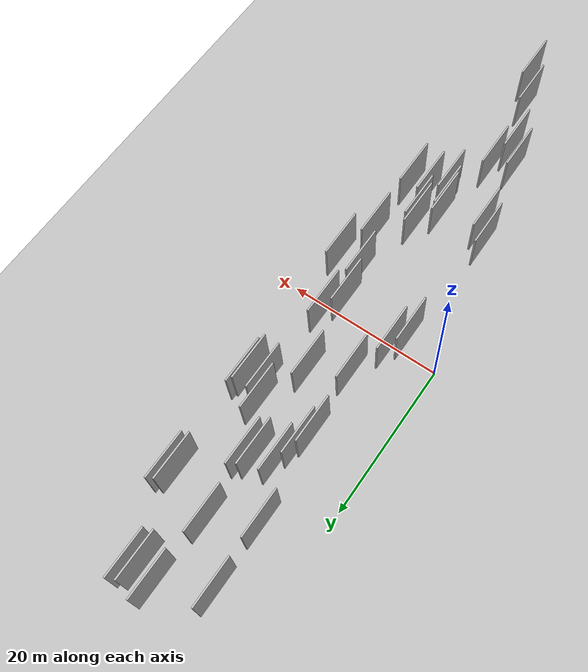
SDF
<?xml version="1.0" encoding="utf-8"?>

<sdf version="1.6">

   <world name="default">

      <gui fullscreen="0">

         <camera name="user_camera">

            <pose>-15 0 4.57585 0 0 0</pose>

            <view_controller>orbit</view_controller>

         </camera>

      </gui>

      <scene>

         <sky>

           <clouds>

             <speed>12</speed>

           </clouds>

         </sky>

         <ambient>0.4 0.4 0.4 1</ambient>

         <background>0.7 0.7 0.7 1</background>

         <shadows>1</shadows>

      </scene>

      <gravity>0 0 -9.8066</gravity>

      <magnetic_field>6e-06 2.3e-05 -4.2e-05</magnetic_field>

      <physics default="0" name="default_physics" type="ode">

         <ode>

            <solver>

               <type>quick</type>

               <iters>10</iters>

               <sor>1.0</sor>

               <use_dynamic_moi_rescaling>0</use_dynamic_moi_rescaling>

            </solver>

            <constraints>

               <cfm>0</cfm>

               <erp>0.2</erp>

               <contact_max_correcting_vel>100</contact_max_correcting_vel>

               <contact_surface_layer>0.001</contact_surface_layer>

            </constraints>

         </ode>

         <max_step_size>0.004</max_step_size>

         <real_time_factor>1</real_time_factor>

         <real_time_update_rate>250</real_time_update_rate>

      </physics>

      <light name="sun" type="directional">

         <cast_shadows>1</cast_shadows>

         <pose>0 0 10 0 0 0</pose>

         <diffuse>0.8 0.8 0.8 1</diffuse>

         <specular>0.2 0.2 0.2 1</specular>

         <attenuation>

            <range>1000</range>

            <constant>0.9</constant>

            <linear>0.01</linear>

            <quadratic>0.001</quadratic>

         </attenuation>

         <direction>-0.5 0.1 -0.9</direction>

      </light>

      <include>

         <name>ground_plane_1</name>

         <uri>model://HANNAS_ground_plane</uri>

         <pose>0 0 0  0 0 0</pose>

      </include>

      <include>

         <name>ground_plane_2</name>

         <uri>model://HANNAS_ground_plane</uri>

         <pose>100 0 0  0 0 0</pose>

      </include>

      <model name="HANNAS_wall_1">

         <static>1</static>

         <pose frame="">10.1155 20.7372 5.0 0.000000 0.000000 1.570796</pose>

         <link name="link">

            <pose frame="">0 0 3.00 0 0 0</pose>

            <collision name="collision">

               <geometry>

                  <box>

                     <size>6.00 0.2 6.00</size>

                  </box>

               </geometry>

               <max_contacts>10</max_contacts>

               <surface>

                  <contact>

                     <ode/>

                  </contact>

                  <bounce/>

                  <friction>

                     <torsional>

                        <ode/>

                     </torsional>

                     <ode/>

                  </friction>

               </surface>

            </collision>

            <visual name="visual">

               <cast_shadows>0</cast_shadows>

               <geometry>

                  <box>

                     <size>6.00 0.2 6.00</size>

                  </box>

               </geometry>

               <material>

                  <script>

                     <uri>model://HANNAS_wall/materials/scripts</uri>

                     <uri>model://HANNAS_wall/materials/textures</uri>

                     <name>vrc/HANNAS_wall</name>

                  </script>

               </material>

            </visual>

            <self_collide>0</self_collide>

            <enable_wind>0</enable_wind>

            <kinematic>0</kinematic>

         </link>

      </model>

      <model name="HANNAS_wall_2">

         <static>1</static>

         <pose frame="">5.0447 34.4858 5.0 0.000000 0.000000 1.570796</pose>

         <link name="link">

            <pose frame="">0 0 3.00 0 0 0</pose>

            <collision name="collision">

               <geometry>

                  <box>

                     <size>6.00 0.2 6.00</size>

                  </box>

               </geometry>

               <max_contacts>10</max_contacts>

               <surface>

                  <contact>

                     <ode/>

                  </contact>

                  <bounce/>

                  <friction>

                     <torsional>

                        <ode/>

                     </torsional>

                     <ode/>

                  </friction>

               </surface>

            </collision>

            <visual name="visual">

               <cast_shadows>0</cast_shadows>

               <geometry>

                  <box>

                     <size>6.00 0.2 6.00</size>

                  </box>

               </geometry>

               <material>

                  <script>

                     <uri>model://HANNAS_wall/materials/scripts</uri>

                     <uri>model://HANNAS_wall/materials/textures</uri>

                     <name>vrc/HANNAS_wall</name>

                  </script>

               </material>

            </visual>

            <self_collide>0</self_collide>

            <enable_wind>0</enable_wind>

            <kinematic>0</kinematic>

         </link>

      </model>

      <model name="HANNAS_wall_3">

         <static>1</static>

         <pose frame="">8.9073 -35.4801 5.0 0.000000 0.000000 1.570796</pose>

         <link name="link">

            <pose frame="">0 0 3.00 0 0 0</pose>

            <collision name="collision">

               <geometry>

                  <box>

                     <size>6.00 0.2 6.00</size>

                  </box>

               </geometry>

               <max_contacts>10</max_contacts>

               <surface>

                  <contact>

                     <ode/>

                  </contact>

                  <bounce/>

                  <friction>

                     <torsional>

                        <ode/>

                     </torsional>

                     <ode/>

                  </friction>

               </surface>

            </collision>

            <visual name="visual">

               <cast_shadows>0</cast_shadows>

               <geometry>

                  <box>

                     <size>6.00 0.2 6.00</size>

                  </box>

               </geometry>

               <material>

                  <script>

                     <uri>model://HANNAS_wall/materials/scripts</uri>

                     <uri>model://HANNAS_wall/materials/textures</uri>

                     <name>vrc/HANNAS_wall</name>

                  </script>

               </material>

            </visual>

            <self_collide>0</self_collide>

            <enable_wind>0</enable_wind>

            <kinematic>0</kinematic>

         </link>

      </model>

      <model name="HANNAS_wall_4">

         <static>1</static>

         <pose frame="">12.4388 -17.6153 5.0 0.000000 0.000000 1.570796</pose>

         <link name="link">

            <pose frame="">0 0 3.00 0 0 0</pose>

            <collision name="collision">

               <geometry>

                  <box>

                     <size>6.00 0.2 6.00</size>

                  </box>

               </geometry>

               <max_contacts>10</max_contacts>

               <surface>

                  <contact>

                     <ode/>

                  </contact>

                  <bounce/>

                  <friction>

                     <torsional>

                        <ode/>

                     </torsional>

                     <ode/>

                  </friction>

               </surface>

            </collision>

            <visual name="visual">

               <cast_shadows>0</cast_shadows>

               <geometry>

                  <box>

                     <size>6.00 0.2 6.00</size>

                  </box>

               </geometry>

               <material>

                  <script>

                     <uri>model://HANNAS_wall/materials/scripts</uri>

                     <uri>model://HANNAS_wall/materials/textures</uri>

                     <name>vrc/HANNAS_wall</name>

                  </script>

               </material>

            </visual>

            <self_collide>0</self_collide>

            <enable_wind>0</enable_wind>

            <kinematic>0</kinematic>

         </link>

      </model>

      <model name="HANNAS_wall_5">

         <static>1</static>

         <pose frame="">13.9212 37.0273 5.0 0.000000 0.000000 1.570796</pose>

         <link name="link">

            <pose frame="">0 0 3.00 0 0 0</pose>

            <collision name="collision">

               <geometry>

                  <box>

                     <size>6.00 0.2 6.00</size>

                  </box>

               </geometry>

               <max_contacts>10</max_contacts>

               <surface>

                  <contact>

                     <ode/>

                  </contact>

                  <bounce/>

                  <friction>

                     <torsional>

                        <ode/>

                     </torsional>

                     <ode/>

                  </friction>

               </surface>

            </collision>

            <visual name="visual">

               <cast_shadows>0</cast_shadows>

               <geometry>

                  <box>

                     <size>6.00 0.2 6.00</size>

                  </box>

               </geometry>

               <material>

                  <script>

                     <uri>model://HANNAS_wall/materials/scripts</uri>

                     <uri>model://HANNAS_wall/materials/textures</uri>

                     <name>vrc/HANNAS_wall</name>

                  </script>

               </material>

            </visual>

            <self_collide>0</self_collide>

            <enable_wind>0</enable_wind>

            <kinematic>0</kinematic>

         </link>

      </model>

      <model name="HANNAS_wall_6">

         <static>1</static>

         <pose frame="">12.6354 -0.1262 5.0 0.000000 0.000000 1.570796</pose>

         <link name="link">

            <pose frame="">0 0 3.00 0 0 0</pose>

            <collision name="collision">

               <geometry>

                  <box>

                     <size>6.00 0.2 6.00</size>

                  </box>

               </geometry>

               <max_contacts>10</max_contacts>

               <surface>

                  <contact>

                     <ode/>

                  </contact>

                  <bounce/>

                  <friction>

                     <torsional>

                        <ode/>

                     </torsional>

                     <ode/>

                  </friction>

               </surface>

            </collision>

            <visual name="visual">

               <cast_shadows>0</cast_shadows>

               <geometry>

                  <box>

                     <size>6.00 0.2 6.00</size>

                  </box>

               </geometry>

               <material>

                  <script>

                     <uri>model://HANNAS_wall/materials/scripts</uri>

                     <uri>model://HANNAS_wall/materials/textures</uri>

                     <name>vrc/HANNAS_wall</name>

                  </script>

               </material>

            </visual>

            <self_collide>0</self_collide>

            <enable_wind>0</enable_wind>

            <kinematic>0</kinematic>

         </link>

      </model>

      <model name="HANNAS_wall_7">

         <static>1</static>

         <pose frame="">4.3865 -16.9799 5.0 0.000000 0.000000 1.570796</pose>

         <link name="link">

            <pose frame="">0 0 3.00 0 0 0</pose>

            <collision name="collision">

               <geometry>

                  <box>

                     <size>6.00 0.2 6.00</size>

                  </box>

               </geometry>

               <max_contacts>10</max_contacts>

               <surface>

                  <contact>

                     <ode/>

                  </contact>

                  <bounce/>

                  <friction>

                     <torsional>

                        <ode/>

                     </torsional>

                     <ode/>

                  </friction>

               </surface>

            </collision>

            <visual name="visual">

               <cast_shadows>0</cast_shadows>

               <geometry>

                  <box>

                     <size>6.00 0.2 6.00</size>

                  </box>

               </geometry>

               <material>

                  <script>

                     <uri>model://HANNAS_wall/materials/scripts</uri>

                     <uri>model://HANNAS_wall/materials/textures</uri>

                     <name>vrc/HANNAS_wall</name>

                  </script>

               </material>

            </visual>

            <self_collide>0</self_collide>

            <enable_wind>0</enable_wind>

            <kinematic>0</kinematic>

         </link>

      </model>

      <model name="HANNAS_wall_8">

         <static>1</static>

         <pose frame="">10.5336 -39.0936 5.0 0.000000 0.000000 1.570796</pose>

         <link name="link">

            <pose frame="">0 0 3.00 0 0 0</pose>

            <collision name="collision">

               <geometry>

                  <box>

                     <size>6.00 0.2 6.00</size>

                  </box>

               </geometry>

               <max_contacts>10</max_contacts>

               <surface>

                  <contact>

                     <ode/>

                  </contact>

                  <bounce/>

                  <friction>

                     <torsional>

                        <ode/>

                     </torsional>

                     <ode/>

                  </friction>

               </surface>

            </collision>

            <visual name="visual">

               <cast_shadows>0</cast_shadows>

               <geometry>

                  <box>

                     <size>6.00 0.2 6.00</size>

                  </box>

               </geometry>

               <material>

                  <script>

                     <uri>model://HANNAS_wall/materials/scripts</uri>

                     <uri>model://HANNAS_wall/materials/textures</uri>

                     <name>vrc/HANNAS_wall</name>

                  </script>

               </material>

            </visual>

            <self_collide>0</self_collide>

            <enable_wind>0</enable_wind>

            <kinematic>0</kinematic>

         </link>

      </model>

      <model name="HANNAS_wall_9">

         <static>1</static>

         <pose frame="">6.9598 7.1657 5.0 0.000000 0.000000 1.570796</pose>

         <link name="link">

            <pose frame="">0 0 3.00 0 0 0</pose>

            <collision name="collision">

               <geometry>

                  <box>

                     <size>6.00 0.2 6.00</size>

                  </box>

               </geometry>

               <max_contacts>10</max_contacts>

               <surface>

                  <contact>

                     <ode/>

                  </contact>

                  <bounce/>

                  <friction>

                     <torsional>

                        <ode/>

                     </torsional>

                     <ode/>

                  </friction>

               </surface>

            </collision>

            <visual name="visual">

               <cast_shadows>0</cast_shadows>

               <geometry>

                  <box>

                     <size>6.00 0.2 6.00</size>

                  </box>

               </geometry>

               <material>

                  <script>

                     <uri>model://HANNAS_wall/materials/scripts</uri>

                     <uri>model://HANNAS_wall/materials/textures</uri>

                     <name>vrc/HANNAS_wall</name>

                  </script>

               </material>

            </visual>

            <self_collide>0</self_collide>

            <enable_wind>0</enable_wind>

            <kinematic>0</kinematic>

         </link>

      </model>

      <model name="HANNAS_wall_10">

         <static>1</static>

         <pose frame="">5.4087 -26.3921 5.0 0.000000 0.000000 1.570796</pose>

         <link name="link">

            <pose frame="">0 0 3.00 0 0 0</pose>

            <collision name="collision">

               <geometry>

                  <box>

                     <size>6.00 0.2 6.00</size>

                  </box>

               </geometry>

               <max_contacts>10</max_contacts>

               <surface>

                  <contact>

                     <ode/>

                  </contact>

                  <bounce/>

                  <friction>

                     <torsional>

                        <ode/>

                     </torsional>

                     <ode/>

                  </friction>

               </surface>

            </collision>

            <visual name="visual">

               <cast_shadows>0</cast_shadows>

               <geometry>

                  <box>

                     <size>6.00 0.2 6.00</size>

                  </box>

               </geometry>

               <material>

                  <script>

                     <uri>model://HANNAS_wall/materials/scripts</uri>

                     <uri>model://HANNAS_wall/materials/textures</uri>

                     <name>vrc/HANNAS_wall</name>

                  </script>

               </material>

            </visual>

            <self_collide>0</self_collide>

            <enable_wind>0</enable_wind>

            <kinematic>0</kinematic>

         </link>

      </model>

      <model name="HANNAS_wall_11">

         <static>1</static>

         <pose frame="">10.7234 37.3953 5.0 0.000000 0.000000 1.570796</pose>

         <link name="link">

            <pose frame="">0 0 3.00 0 0 0</pose>

            <collision name="collision">

               <geometry>

                  <box>

                     <size>6.00 0.2 6.00</size>

                  </box>

               </geometry>

               <max_contacts>10</max_contacts>

               <surface>

                  <contact>

                     <ode/>

                  </contact>

                  <bounce/>

                  <friction>

                     <torsional>

                        <ode/>

                     </torsional>

                     <ode/>

                  </friction>

               </surface>

            </collision>

            <visual name="visual">

               <cast_shadows>0</cast_shadows>

               <geometry>

                  <box>

                     <size>6.00 0.2 6.00</size>

                  </box>

               </geometry>

               <material>

                  <script>

                     <uri>model://HANNAS_wall/materials/scripts</uri>

                     <uri>model://HANNAS_wall/materials/textures</uri>

                     <name>vrc/HANNAS_wall</name>

                  </script>

               </material>

            </visual>

            <self_collide>0</self_collide>

            <enable_wind>0</enable_wind>

            <kinematic>0</kinematic>

         </link>

      </model>

      <model name="HANNAS_wall_12">

         <static>1</static>

         <pose frame="">11.7979 -14.0360 5.0 0.000000 0.000000 1.570796</pose>

         <link name="link">

            <pose frame="">0 0 3.00 0 0 0</pose>

            <collision name="collision">

               <geometry>

                  <box>

                     <size>6.00 0.2 6.00</size>

                  </box>

               </geometry>

               <max_contacts>10</max_contacts>

               <surface>

                  <contact>

                     <ode/>

                  </contact>

                  <bounce/>

                  <friction>

                     <torsional>

                        <ode/>

                     </torsional>

                     <ode/>

                  </friction>

               </surface>

            </collision>

            <visual name="visual">

               <cast_shadows>0</cast_shadows>

               <geometry>

                  <box>

                     <size>6.00 0.2 6.00</size>

                  </box>

               </geometry>

               <material>

                  <script>

                     <uri>model://HANNAS_wall/materials/scripts</uri>

                     <uri>model://HANNAS_wall/materials/textures</uri>

                     <name>vrc/HANNAS_wall</name>

                  </script>

               </material>

            </visual>

            <self_collide>0</self_collide>

            <enable_wind>0</enable_wind>

            <kinematic>0</kinematic>

         </link>

      </model>

      <model name="HANNAS_wall_13">

         <static>1</static>

         <pose frame="">10.2942 29.1949 5.0 0.000000 0.000000 1.570796</pose>

         <link name="link">

            <pose frame="">0 0 3.00 0 0 0</pose>

            <collision name="collision">

               <geometry>

                  <box>

                     <size>6.00 0.2 6.00</size>

                  </box>

               </geometry>

               <max_contacts>10</max_contacts>

               <surface>

                  <contact>

                     <ode/>

                  </contact>

                  <bounce/>

                  <friction>

                     <torsional>

                        <ode/>

                     </torsional>

                     <ode/>

                  </friction>

               </surface>

            </collision>

            <visual name="visual">

               <cast_shadows>0</cast_shadows>

               <geometry>

                  <box>

                     <size>6.00 0.2 6.00</size>

                  </box>

               </geometry>

               <material>

                  <script>

                     <uri>model://HANNAS_wall/materials/scripts</uri>

                     <uri>model://HANNAS_wall/materials/textures</uri>

                     <name>vrc/HANNAS_wall</name>

                  </script>

               </material>

            </visual>

            <self_collide>0</self_collide>

            <enable_wind>0</enable_wind>

            <kinematic>0</kinematic>

         </link>

      </model>

      <model name="HANNAS_wall_14">

         <static>1</static>

         <pose frame="">16.9175 27.0791 5.0 0.000000 0.000000 1.570796</pose>

         <link name="link">

            <pose frame="">0 0 3.00 0 0 0</pose>

            <collision name="collision">

               <geometry>

                  <box>

                     <size>6.00 0.2 6.00</size>

                  </box>

               </geometry>

               <max_contacts>10</max_contacts>

               <surface>

                  <contact>

                     <ode/>

                  </contact>

                  <bounce/>

                  <friction>

                     <torsional>

                        <ode/>

                     </torsional>

                     <ode/>

                  </friction>

               </surface>

            </collision>

            <visual name="visual">

               <cast_shadows>0</cast_shadows>

               <geometry>

                  <box>

                     <size>6.00 0.2 6.00</size>

                  </box>

               </geometry>

               <material>

                  <script>

                     <uri>model://HANNAS_wall/materials/scripts</uri>

                     <uri>model://HANNAS_wall/materials/textures</uri>

                     <name>vrc/HANNAS_wall</name>

                  </script>

               </material>

            </visual>

            <self_collide>0</self_collide>

            <enable_wind>0</enable_wind>

            <kinematic>0</kinematic>

         </link>

      </model>

      <model name="HANNAS_wall_15">

         <static>1</static>

         <pose frame="">7.8636 19.9528 5.0 0.000000 0.000000 1.570796</pose>

         <link name="link">

            <pose frame="">0 0 3.00 0 0 0</pose>

            <collision name="collision">

               <geometry>

                  <box>

                     <size>6.00 0.2 6.00</size>

                  </box>

               </geometry>

               <max_contacts>10</max_contacts>

               <surface>

                  <contact>

                     <ode/>

                  </contact>

                  <bounce/>

                  <friction>

                     <torsional>

                        <ode/>

                     </torsional>

                     <ode/>

                  </friction>

               </surface>

            </collision>

            <visual name="visual">

               <cast_shadows>0</cast_shadows>

               <geometry>

                  <box>

                     <size>6.00 0.2 6.00</size>

                  </box>

               </geometry>

               <material>

                  <script>

                     <uri>model://HANNAS_wall/materials/scripts</uri>

                     <uri>model://HANNAS_wall/materials/textures</uri>

                     <name>vrc/HANNAS_wall</name>

                  </script>

               </material>

            </visual>

            <self_collide>0</self_collide>

            <enable_wind>0</enable_wind>

            <kinematic>0</kinematic>

         </link>

      </model>

      <model name="HANNAS_wall_16">

         <static>1</static>

         <pose frame="">16.1518 13.4465 5.0 0.000000 0.000000 1.570796</pose>

         <link name="link">

            <pose frame="">0 0 3.00 0 0 0</pose>

            <collision name="collision">

               <geometry>

                  <box>

                     <size>6.00 0.2 6.00</size>

                  </box>

               </geometry>

               <max_contacts>10</max_contacts>

               <surface>

                  <contact>

                     <ode/>

                  </contact>

                  <bounce/>

                  <friction>

                     <torsional>

                        <ode/>

                     </torsional>

                     <ode/>

                  </friction>

               </surface>

            </collision>

            <visual name="visual">

               <cast_shadows>0</cast_shadows>

               <geometry>

                  <box>

                     <size>6.00 0.2 6.00</size>

                  </box>

               </geometry>

               <material>

                  <script>

                     <uri>model://HANNAS_wall/materials/scripts</uri>

                     <uri>model://HANNAS_wall/materials/textures</uri>

                     <name>vrc/HANNAS_wall</name>

                  </script>

               </material>

            </visual>

            <self_collide>0</self_collide>

            <enable_wind>0</enable_wind>

            <kinematic>0</kinematic>

         </link>

      </model>

      <model name="HANNAS_wall_17">

         <static>1</static>

         <pose frame="">9.7368 -17.1070 5.0 0.000000 0.000000 1.570796</pose>

         <link name="link">

            <pose frame="">0 0 3.00 0 0 0</pose>

            <collision name="collision">

               <geometry>

                  <box>

                     <size>6.00 0.2 6.00</size>

                  </box>

               </geometry>

               <max_contacts>10</max_contacts>

               <surface>

                  <contact>

                     <ode/>

                  </contact>

                  <bounce/>

                  <friction>

                     <torsional>

                        <ode/>

                     </torsional>

                     <ode/>

                  </friction>

               </surface>

            </collision>

            <visual name="visual">

               <cast_shadows>0</cast_shadows>

               <geometry>

                  <box>

                     <size>6.00 0.2 6.00</size>

                  </box>

               </geometry>

               <material>

                  <script>

                     <uri>model://HANNAS_wall/materials/scripts</uri>

                     <uri>model://HANNAS_wall/materials/textures</uri>

                     <name>vrc/HANNAS_wall</name>

                  </script>

               </material>

            </visual>

            <self_collide>0</self_collide>

            <enable_wind>0</enable_wind>

            <kinematic>0</kinematic>

         </link>

      </model>

      <model name="HANNAS_wall_18">

         <static>1</static>

         <pose frame="">11.3322 -13.0874 5.0 0.000000 0.000000 1.570796</pose>

         <link name="link">

            <pose frame="">0 0 3.00 0 0 0</pose>

            <collision name="collision">

               <geometry>

                  <box>

                     <size>6.00 0.2 6.00</size>

                  </box>

               </geometry>

               <max_contacts>10</max_contacts>

               <surface>

                  <contact>

                     <ode/>

                  </contact>

                  <bounce/>

                  <friction>

                     <torsional>

                        <ode/>

                     </torsional>

                     <ode/>

                  </friction>

               </surface>

            </collision>

            <visual name="visual">

               <cast_shadows>0</cast_shadows>

               <geometry>

                  <box>

                     <size>6.00 0.2 6.00</size>

                  </box>

               </geometry>

               <material>

                  <script>

                     <uri>model://HANNAS_wall/materials/scripts</uri>

                     <uri>model://HANNAS_wall/materials/textures</uri>

                     <name>vrc/HANNAS_wall</name>

                  </script>

               </material>

            </visual>

            <self_collide>0</self_collide>

            <enable_wind>0</enable_wind>

            <kinematic>0</kinematic>

         </link>

      </model>

      <model name="HANNAS_wall_19">

         <static>1</static>

         <pose frame="">16.4337 -4.6340 5.0 0.000000 0.000000 1.570796</pose>

         <link name="link">

            <pose frame="">0 0 3.00 0 0 0</pose>

            <collision name="collision">

               <geometry>

                  <box>

                     <size>6.00 0.2 6.00</size>

                  </box>

               </geometry>

               <max_contacts>10</max_contacts>

               <surface>

                  <contact>

                     <ode/>

                  </contact>

                  <bounce/>

                  <friction>

                     <torsional>

                        <ode/>

                     </torsional>

                     <ode/>

                  </friction>

               </surface>

            </collision>

            <visual name="visual">

               <cast_shadows>0</cast_shadows>

               <geometry>

                  <box>

                     <size>6.00 0.2 6.00</size>

                  </box>

               </geometry>

               <material>

                  <script>

                     <uri>model://HANNAS_wall/materials/scripts</uri>

                     <uri>model://HANNAS_wall/materials/textures</uri>

                     <name>vrc/HANNAS_wall</name>

                  </script>

               </material>

            </visual>

            <self_collide>0</self_collide>

            <enable_wind>0</enable_wind>

            <kinematic>0</kinematic>

         </link>

      </model>

      <model name="HANNAS_wall_20">

         <static>1</static>

         <pose frame="">16.4679 14.1107 5.0 0.000000 0.000000 1.570796</pose>

         <link name="link">

            <pose frame="">0 0 3.00 0 0 0</pose>

            <collision name="collision">

               <geometry>

                  <box>

                     <size>6.00 0.2 6.00</size>

                  </box>

               </geometry>

               <max_contacts>10</max_contacts>

               <surface>

                  <contact>

                     <ode/>

                  </contact>

                  <bounce/>

                  <friction>

                     <torsional>

                        <ode/>

                     </torsional>

                     <ode/>

                  </friction>

               </surface>

            </collision>

            <visual name="visual">

               <cast_shadows>0</cast_shadows>

               <geometry>

                  <box>

                     <size>6.00 0.2 6.00</size>

                  </box>

               </geometry>

               <material>

                  <script>

                     <uri>model://HANNAS_wall/materials/scripts</uri>

                     <uri>model://HANNAS_wall/materials/textures</uri>

                     <name>vrc/HANNAS_wall</name>

                  </script>

               </material>

            </visual>

            <self_collide>0</self_collide>

            <enable_wind>0</enable_wind>

            <kinematic>0</kinematic>

         </link>

      </model>

      <model name="HANNAS_wall_21">

         <static>1</static>

         <pose frame="">12.8851 36.6154 5.0 0.000000 0.000000 1.570796</pose>

         <link name="link">

            <pose frame="">0 0 3.00 0 0 0</pose>

            <collision name="collision">

               <geometry>

                  <box>

                     <size>6.00 0.2 6.00</size>

                  </box>

               </geometry>

               <max_contacts>10</max_contacts>

               <surface>

                  <contact>

                     <ode/>

                  </contact>

                  <bounce/>

                  <friction>

                     <torsional>

                        <ode/>

                     </torsional>

                     <ode/>

                  </friction>

               </surface>

            </collision>

            <visual name="visual">

               <cast_shadows>0</cast_shadows>

               <geometry>

                  <box>

                     <size>6.00 0.2 6.00</size>

                  </box>

               </geometry>

               <material>

                  <script>

                     <uri>model://HANNAS_wall/materials/scripts</uri>

                     <uri>model://HANNAS_wall/materials/textures</uri>

                     <name>vrc/HANNAS_wall</name>

                  </script>

               </material>

            </visual>

            <self_collide>0</self_collide>

            <enable_wind>0</enable_wind>

            <kinematic>0</kinematic>

         </link>

      </model>

      <model name="HANNAS_wall_22">

         <static>1</static>

         <pose frame="">16.1583 26.7006 5.0 0.000000 0.000000 1.570796</pose>

         <link name="link">

            <pose frame="">0 0 3.00 0 0 0</pose>

            <collision name="collision">

               <geometry>

                  <box>

                     <size>6.00 0.2 6.00</size>

                  </box>

               </geometry>

               <max_contacts>10</max_contacts>

               <surface>

                  <contact>

                     <ode/>

                  </contact>

                  <bounce/>

                  <friction>

                     <torsional>

                        <ode/>

                     </torsional>

                     <ode/>

                  </friction>

               </surface>

            </collision>

            <visual name="visual">

               <cast_shadows>0</cast_shadows>

               <geometry>

                  <box>

                     <size>6.00 0.2 6.00</size>

                  </box>

               </geometry>

               <material>

                  <script>

                     <uri>model://HANNAS_wall/materials/scripts</uri>

                     <uri>model://HANNAS_wall/materials/textures</uri>

                     <name>vrc/HANNAS_wall</name>

                  </script>

               </material>

            </visual>

            <self_collide>0</self_collide>

            <enable_wind>0</enable_wind>

            <kinematic>0</kinematic>

         </link>

      </model>

      <model name="HANNAS_wall_23">

         <static>1</static>

         <pose frame="">5.1734 26.4346 5.0 0.000000 0.000000 1.570796</pose>

         <link name="link">

            <pose frame="">0 0 3.00 0 0 0</pose>

            <collision name="collision">

               <geometry>

                  <box>

                     <size>6.00 0.2 6.00</size>

                  </box>

               </geometry>

               <max_contacts>10</max_contacts>

               <surface>

                  <contact>

                     <ode/>

                  </contact>

                  <bounce/>

                  <friction>

                     <torsional>

                        <ode/>

                     </torsional>

                     <ode/>

                  </friction>

               </surface>

            </collision>

            <visual name="visual">

               <cast_shadows>0</cast_shadows>

               <geometry>

                  <box>

                     <size>6.00 0.2 6.00</size>

                  </box>

               </geometry>

               <material>

                  <script>

                     <uri>model://HANNAS_wall/materials/scripts</uri>

                     <uri>model://HANNAS_wall/materials/textures</uri>

                     <name>vrc/HANNAS_wall</name>

                  </script>

               </material>

            </visual>

            <self_collide>0</self_collide>

            <enable_wind>0</enable_wind>

            <kinematic>0</kinematic>

         </link>

      </model>

      <model name="HANNAS_wall_24">

         <static>1</static>

         <pose frame="">9.4980 -16.1049 5.0 0.000000 0.000000 1.570796</pose>

         <link name="link">

            <pose frame="">0 0 3.00 0 0 0</pose>

            <collision name="collision">

               <geometry>

                  <box>

                     <size>6.00 0.2 6.00</size>

                  </box>

               </geometry>

               <max_contacts>10</max_contacts>

               <surface>

                  <contact>

                     <ode/>

                  </contact>

                  <bounce/>

                  <friction>

                     <torsional>

                        <ode/>

                     </torsional>

                     <ode/>

                  </friction>

               </surface>

            </collision>

            <visual name="visual">

               <cast_shadows>0</cast_shadows>

               <geometry>

                  <box>

                     <size>6.00 0.2 6.00</size>

                  </box>

               </geometry>

               <material>

                  <script>

                     <uri>model://HANNAS_wall/materials/scripts</uri>

                     <uri>model://HANNAS_wall/materials/textures</uri>

                     <name>vrc/HANNAS_wall</name>

                  </script>

               </material>

            </visual>

            <self_collide>0</self_collide>

            <enable_wind>0</enable_wind>

            <kinematic>0</kinematic>

         </link>

      </model>

      <model name="HANNAS_wall_25">

         <static>1</static>

         <pose frame="">10.5479 -19.2135 5.0 0.000000 0.000000 1.570796</pose>

         <link name="link">

            <pose frame="">0 0 3.00 0 0 0</pose>

            <collision name="collision">

               <geometry>

                  <box>

                     <size>6.00 0.2 6.00</size>

                  </box>

               </geometry>

               <max_contacts>10</max_contacts>

               <surface>

                  <contact>

                     <ode/>

                  </contact>

                  <bounce/>

                  <friction>

                     <torsional>

                        <ode/>

                     </torsional>

                     <ode/>

                  </friction>

               </surface>

            </collision>

            <visual name="visual">

               <cast_shadows>0</cast_shadows>

               <geometry>

                  <box>

                     <size>6.00 0.2 6.00</size>

                  </box>

               </geometry>

               <material>

                  <script>

                     <uri>model://HANNAS_wall/materials/scripts</uri>

                     <uri>model://HANNAS_wall/materials/textures</uri>

                     <name>vrc/HANNAS_wall</name>

                  </script>

               </material>

            </visual>

            <self_collide>0</self_collide>

            <enable_wind>0</enable_wind>

            <kinematic>0</kinematic>

         </link>

      </model>

      <model name="HANNAS_wall_26">

         <static>1</static>

         <pose frame="">7.9565 -25.0609 5.0 0.000000 0.000000 1.570796</pose>

         <link name="link">

            <pose frame="">0 0 3.00 0 0 0</pose>

            <collision name="collision">

               <geometry>

                  <box>

                     <size>6.00 0.2 6.00</size>

                  </box>

               </geometry>

               <max_contacts>10</max_contacts>

               <surface>

                  <contact>

                     <ode/>

                  </contact>

                  <bounce/>

                  <friction>

                     <torsional>

                        <ode/>

                     </torsional>

                     <ode/>

                  </friction>

               </surface>

            </collision>

            <visual name="visual">

               <cast_shadows>0</cast_shadows>

               <geometry>

                  <box>

                     <size>6.00 0.2 6.00</size>

                  </box>

               </geometry>

               <material>

                  <script>

                     <uri>model://HANNAS_wall/materials/scripts</uri>

                     <uri>model://HANNAS_wall/materials/textures</uri>

                     <name>vrc/HANNAS_wall</name>

                  </script>

               </material>

            </visual>

            <self_collide>0</self_collide>

            <enable_wind>0</enable_wind>

            <kinematic>0</kinematic>

         </link>

      </model>

      <model name="HANNAS_wall_27">

         <static>1</static>

         <pose frame="">14.6997 -9.2679 5.0 0.000000 0.000000 1.570796</pose>

         <link name="link">

            <pose frame="">0 0 3.00 0 0 0</pose>

            <collision name="collision">

               <geometry>

                  <box>

                     <size>6.00 0.2 6.00</size>

                  </box>

               </geometry>

               <max_contacts>10</max_contacts>

               <surface>

                  <contact>

                     <ode/>

                  </contact>

                  <bounce/>

                  <friction>

                     <torsional>

                        <ode/>

                     </torsional>

                     <ode/>

                  </friction>

               </surface>

            </collision>

            <visual name="visual">

               <cast_shadows>0</cast_shadows>

               <geometry>

                  <box>

                     <size>6.00 0.2 6.00</size>

                  </box>

               </geometry>

               <material>

                  <script>

                     <uri>model://HANNAS_wall/materials/scripts</uri>

                     <uri>model://HANNAS_wall/materials/textures</uri>

                     <name>vrc/HANNAS_wall</name>

                  </script>

               </material>

            </visual>

            <self_collide>0</self_collide>

            <enable_wind>0</enable_wind>

            <kinematic>0</kinematic>

         </link>

      </model>

      <model name="HANNAS_wall_28">

         <static>1</static>

         <pose frame="">3.1330 -15.2780 5.0 0.000000 0.000000 1.570796</pose>

         <link name="link">

            <pose frame="">0 0 3.00 0 0 0</pose>

            <collision name="collision">

               <geometry>

                  <box>

                     <size>6.00 0.2 6.00</size>

                  </box>

               </geometry>

               <max_contacts>10</max_contacts>

               <surface>

                  <contact>

                     <ode/>

                  </contact>

                  <bounce/>

                  <friction>

                     <torsional>

                        <ode/>

                     </torsional>

                     <ode/>

                  </friction>

               </surface>

            </collision>

            <visual name="visual">

               <cast_shadows>0</cast_shadows>

               <geometry>

                  <box>

                     <size>6.00 0.2 6.00</size>

                  </box>

               </geometry>

               <material>

                  <script>

                     <uri>model://HANNAS_wall/materials/scripts</uri>

                     <uri>model://HANNAS_wall/materials/textures</uri>

                     <name>vrc/HANNAS_wall</name>

                  </script>

               </material>

            </visual>

            <self_collide>0</self_collide>

            <enable_wind>0</enable_wind>

            <kinematic>0</kinematic>

         </link>

      </model>

      <model name="HANNAS_wall_29">

         <static>1</static>

         <pose frame="">14.7145 -17.4931 5.0 0.000000 0.000000 1.570796</pose>

         <link name="link">

            <pose frame="">0 0 3.00 0 0 0</pose>

            <collision name="collision">

               <geometry>

                  <box>

                     <size>6.00 0.2 6.00</size>

                  </box>

               </geometry>

               <max_contacts>10</max_contacts>

               <surface>

                  <contact>

                     <ode/>

                  </contact>

                  <bounce/>

                  <friction>

                     <torsional>

                        <ode/>

                     </torsional>

                     <ode/>

                  </friction>

               </surface>

            </collision>

            <visual name="visual">

               <cast_shadows>0</cast_shadows>

               <geometry>

                  <box>

                     <size>6.00 0.2 6.00</size>

                  </box>

               </geometry>

               <material>

                  <script>

                     <uri>model://HANNAS_wall/materials/scripts</uri>

                     <uri>model://HANNAS_wall/materials/textures</uri>

                     <name>vrc/HANNAS_wall</name>

                  </script>

               </material>

            </visual>

            <self_collide>0</self_collide>

            <enable_wind>0</enable_wind>

            <kinematic>0</kinematic>

         </link>

      </model>

      <model name="HANNAS_wall_30">

         <static>1</static>

         <pose frame="">13.9388 2.5211 5.0 0.000000 0.000000 1.570796</pose>

         <link name="link">

            <pose frame="">0 0 3.00 0 0 0</pose>

            <collision name="collision">

               <geometry>

                  <box>

                     <size>6.00 0.2 6.00</size>

                  </box>

               </geometry>

               <max_contacts>10</max_contacts>

               <surface>

                  <contact>

                     <ode/>

                  </contact>

                  <bounce/>

                  <friction>

                     <torsional>

                        <ode/>

                     </torsional>

                     <ode/>

                  </friction>

               </surface>

            </collision>

            <visual name="visual">

               <cast_shadows>0</cast_shadows>

               <geometry>

                  <box>

                     <size>6.00 0.2 6.00</size>

                  </box>

               </geometry>

               <material>

                  <script>

                     <uri>model://HANNAS_wall/materials/scripts</uri>

                     <uri>model://HANNAS_wall/materials/textures</uri>

                     <name>vrc/HANNAS_wall</name>

                  </script>

               </material>

            </visual>

            <self_collide>0</self_collide>

            <enable_wind>0</enable_wind>

            <kinematic>0</kinematic>

         </link>

      </model>

      <model name="HANNAS_wall_31">

         <static>1</static>

         <pose frame="">5.1548 2.0203 5.0 0.000000 0.000000 1.570796</pose>

         <link name="link">

            <pose frame="">0 0 3.00 0 0 0</pose>

            <collision name="collision">

               <geometry>

                  <box>

                     <size>6.00 0.2 6.00</size>

                  </box>

               </geometry>

               <max_contacts>10</max_contacts>

               <surface>

                  <contact>

                     <ode/>

                  </contact>

                  <bounce/>

                  <friction>

                     <torsional>

                        <ode/>

                     </torsional>

                     <ode/>

                  </friction>

               </surface>

            </collision>

            <visual name="visual">

               <cast_shadows>0</cast_shadows>

               <geometry>

                  <box>

                     <size>6.00 0.2 6.00</size>

                  </box>

               </geometry>

               <material>

                  <script>

                     <uri>model://HANNAS_wall/materials/scripts</uri>

                     <uri>model://HANNAS_wall/materials/textures</uri>

                     <name>vrc/HANNAS_wall</name>

                  </script>

               </material>

            </visual>

            <self_collide>0</self_collide>

            <enable_wind>0</enable_wind>

            <kinematic>0</kinematic>

         </link>

      </model>

      <model name="HANNAS_wall_32">

         <static>1</static>

         <pose frame="">6.9654 17.1893 5.0 0.000000 0.000000 1.570796</pose>

         <link name="link">

            <pose frame="">0 0 3.00 0 0 0</pose>

            <collision name="collision">

               <geometry>

                  <box>

                     <size>6.00 0.2 6.00</size>

                  </box>

               </geometry>

               <max_contacts>10</max_contacts>

               <surface>

                  <contact>

                     <ode/>

                  </contact>

                  <bounce/>

                  <friction>

                     <torsional>

                        <ode/>

                     </torsional>

                     <ode/>

                  </friction>

               </surface>

            </collision>

            <visual name="visual">

               <cast_shadows>0</cast_shadows>

               <geometry>

                  <box>

                     <size>6.00 0.2 6.00</size>

                  </box>

               </geometry>

               <material>

                  <script>

                     <uri>model://HANNAS_wall/materials/scripts</uri>

                     <uri>model://HANNAS_wall/materials/textures</uri>

                     <name>vrc/HANNAS_wall</name>

                  </script>

               </material>

            </visual>

            <self_collide>0</self_collide>

            <enable_wind>0</enable_wind>

            <kinematic>0</kinematic>

         </link>

      </model>

      <model name="HANNAS_wall_33">

         <static>1</static>

         <pose frame="">13.2814 -4.0291 5.0 0.000000 0.000000 1.570796</pose>

         <link name="link">

            <pose frame="">0 0 3.00 0 0 0</pose>

            <collision name="collision">

               <geometry>

                  <box>

                     <size>6.00 0.2 6.00</size>

                  </box>

               </geometry>

               <max_contacts>10</max_contacts>

               <surface>

                  <contact>

                     <ode/>

                  </contact>

                  <bounce/>

                  <friction>

                     <torsional>

                        <ode/>

                     </torsional>

                     <ode/>

                  </friction>

               </surface>

            </collision>

            <visual name="visual">

               <cast_shadows>0</cast_shadows>

               <geometry>

                  <box>

                     <size>6.00 0.2 6.00</size>

                  </box>

               </geometry>

               <material>

                  <script>

                     <uri>model://HANNAS_wall/materials/scripts</uri>

                     <uri>model://HANNAS_wall/materials/textures</uri>

                     <name>vrc/HANNAS_wall</name>

                  </script>

               </material>

            </visual>

            <self_collide>0</self_collide>

            <enable_wind>0</enable_wind>

            <kinematic>0</kinematic>

         </link>

      </model>

      <model name="HANNAS_wall_34">

         <static>1</static>

         <pose frame="">14.2866 13.4302 5.0 0.000000 0.000000 1.570796</pose>

         <link name="link">

            <pose frame="">0 0 3.00 0 0 0</pose>

            <collision name="collision">

               <geometry>

                  <box>

                     <size>6.00 0.2 6.00</size>

                  </box>

               </geometry>

               <max_contacts>10</max_contacts>

               <surface>

                  <contact>

                     <ode/>

                  </contact>

                  <bounce/>

                  <friction>

                     <torsional>

                        <ode/>

                     </torsional>

                     <ode/>

                  </friction>

               </surface>

            </collision>

            <visual name="visual">

               <cast_shadows>0</cast_shadows>

               <geometry>

                  <box>

                     <size>6.00 0.2 6.00</size>

                  </box>

               </geometry>

               <material>

                  <script>

                     <uri>model://HANNAS_wall/materials/scripts</uri>

                     <uri>model://HANNAS_wall/materials/textures</uri>

                     <name>vrc/HANNAS_wall</name>

                  </script>

               </material>

            </visual>

            <self_collide>0</self_collide>

            <enable_wind>0</enable_wind>

            <kinematic>0</kinematic>

         </link>

      </model>

      <model name="HANNAS_wall_35">

         <static>1</static>

         <pose frame="">7.0122 -28.6047 5.0 0.000000 0.000000 1.570796</pose>

         <link name="link">

            <pose frame="">0 0 3.00 0 0 0</pose>

            <collision name="collision">

               <geometry>

                  <box>

                     <size>6.00 0.2 6.00</size>

                  </box>

               </geometry>

               <max_contacts>10</max_contacts>

               <surface>

                  <contact>

                     <ode/>

                  </contact>

                  <bounce/>

                  <friction>

                     <torsional>

                        <ode/>

                     </torsional>

                     <ode/>

                  </friction>

               </surface>

            </collision>

            <visual name="visual">

               <cast_shadows>0</cast_shadows>

               <geometry>

                  <box>

                     <size>6.00 0.2 6.00</size>

                  </box>

               </geometry>

               <material>

                  <script>

                     <uri>model://HANNAS_wall/materials/scripts</uri>

                     <uri>model://HANNAS_wall/materials/textures</uri>

                     <name>vrc/HANNAS_wall</name>

                  </script>

               </material>

            </visual>

            <self_collide>0</self_collide>

            <enable_wind>0</enable_wind>

            <kinematic>0</kinematic>

         </link>

      </model>

      <model name="HANNAS_wall_36">

         <static>1</static>

         <pose frame="">6.4423 15.3518 5.0 0.000000 0.000000 1.570796</pose>

         <link name="link">

            <pose frame="">0 0 3.00 0 0 0</pose>

            <collision name="collision">

               <geometry>

                  <box>

                     <size>6.00 0.2 6.00</size>

                  </box>

               </geometry>

               <max_contacts>10</max_contacts>

               <surface>

                  <contact>

                     <ode/>

                  </contact>

                  <bounce/>

                  <friction>

                     <torsional>

                        <ode/>

                     </torsional>

                     <ode/>

                  </friction>

               </surface>

            </collision>

            <visual name="visual">

               <cast_shadows>0</cast_shadows>

               <geometry>

                  <box>

                     <size>6.00 0.2 6.00</size>

                  </box>

               </geometry>

               <material>

                  <script>

                     <uri>model://HANNAS_wall/materials/scripts</uri>

                     <uri>model://HANNAS_wall/materials/textures</uri>

                     <name>vrc/HANNAS_wall</name>

                  </script>

               </material>

            </visual>

            <self_collide>0</self_collide>

            <enable_wind>0</enable_wind>

            <kinematic>0</kinematic>

         </link>

      </model>

      <model name="HANNAS_wall_37">

         <static>1</static>

         <pose frame="">4.0045 -0.1071 5.0 0.000000 0.000000 1.570796</pose>

         <link name="link">

            <pose frame="">0 0 3.00 0 0 0</pose>

            <collision name="collision">

               <geometry>

                  <box>

                     <size>6.00 0.2 6.00</size>

                  </box>

               </geometry>

               <max_contacts>10</max_contacts>

               <surface>

                  <contact>

                     <ode/>

                  </contact>

                  <bounce/>

                  <friction>

                     <torsional>

                        <ode/>

                     </torsional>

                     <ode/>

                  </friction>

               </surface>

            </collision>

            <visual name="visual">

               <cast_shadows>0</cast_shadows>

               <geometry>

                  <box>

                     <size>6.00 0.2 6.00</size>

                  </box>

               </geometry>

               <material>

                  <script>

                     <uri>model://HANNAS_wall/materials/scripts</uri>

                     <uri>model://HANNAS_wall/materials/textures</uri>

                     <name>vrc/HANNAS_wall</name>

                  </script>

               </material>

            </visual>

            <self_collide>0</self_collide>

            <enable_wind>0</enable_wind>

            <kinematic>0</kinematic>

         </link>

      </model>

      <model name="HANNAS_wall_38">

         <static>1</static>

         <pose frame="">11.0529 21.3214 5.0 0.000000 0.000000 1.570796</pose>

         <link name="link">

            <pose frame="">0 0 3.00 0 0 0</pose>

            <collision name="collision">

               <geometry>

                  <box>

                     <size>6.00 0.2 6.00</size>

                  </box>

               </geometry>

               <max_contacts>10</max_contacts>

               <surface>

                  <contact>

                     <ode/>

                  </contact>

                  <bounce/>

                  <friction>

                     <torsional>

                        <ode/>

                     </torsional>

                     <ode/>

                  </friction>

               </surface>

            </collision>

            <visual name="visual">

               <cast_shadows>0</cast_shadows>

               <geometry>

                  <box>

                     <size>6.00 0.2 6.00</size>

                  </box>

               </geometry>

               <material>

                  <script>

                     <uri>model://HANNAS_wall/materials/scripts</uri>

                     <uri>model://HANNAS_wall/materials/textures</uri>

                     <name>vrc/HANNAS_wall</name>

                  </script>

               </material>

            </visual>

            <self_collide>0</self_collide>

            <enable_wind>0</enable_wind>

            <kinematic>0</kinematic>

         </link>

      </model>

      <model name="HANNAS_wall_39">

         <static>1</static>

         <pose frame="">13.4547 15.6265 5.0 0.000000 0.000000 1.570796</pose>

         <link name="link">

            <pose frame="">0 0 3.00 0 0 0</pose>

            <collision name="collision">

               <geometry>

                  <box>

                     <size>6.00 0.2 6.00</size>

                  </box>

               </geometry>

               <max_contacts>10</max_contacts>

               <surface>

                  <contact>

                     <ode/>

                  </contact>

                  <bounce/>

                  <friction>

                     <torsional>

                        <ode/>

                     </torsional>

                     <ode/>

                  </friction>

               </surface>

            </collision>

            <visual name="visual">

               <cast_shadows>0</cast_shadows>

               <geometry>

                  <box>

                     <size>6.00 0.2 6.00</size>

                  </box>

               </geometry>

               <material>

                  <script>

                     <uri>model://HANNAS_wall/materials/scripts</uri>

                     <uri>model://HANNAS_wall/materials/textures</uri>

                     <name>vrc/HANNAS_wall</name>

                  </script>

               </material>

            </visual>

            <self_collide>0</self_collide>

            <enable_wind>0</enable_wind>

            <kinematic>0</kinematic>

         </link>

      </model>

      <model name="HANNAS_wall_40">

         <static>1</static>

         <pose frame="">11.1462 9.5098 5.0 0.000000 0.000000 1.570796</pose>

         <link name="link">

            <pose frame="">0 0 3.00 0 0 0</pose>

            <collision name="collision">

               <geometry>

                  <box>

                     <size>6.00 0.2 6.00</size>

                  </box>

               </geometry>

               <max_contacts>10</max_contacts>

               <surface>

                  <contact>

                     <ode/>

                  </contact>

                  <bounce/>

                  <friction>

                     <torsional>

                        <ode/>

                     </torsional>

                     <ode/>

                  </friction>

               </surface>

            </collision>

            <visual name="visual">

               <cast_shadows>0</cast_shadows>

               <geometry>

                  <box>

                     <size>6.00 0.2 6.00</size>

                  </box>

               </geometry>

               <material>

                  <script>

                     <uri>model://HANNAS_wall/materials/scripts</uri>

                     <uri>model://HANNAS_wall/materials/textures</uri>

                     <name>vrc/HANNAS_wall</name>

                  </script>

               </material>

            </visual>

            <self_collide>0</self_collide>

            <enable_wind>0</enable_wind>

            <kinematic>0</kinematic>

         </link>

      </model>

   </world>

</sdf>
